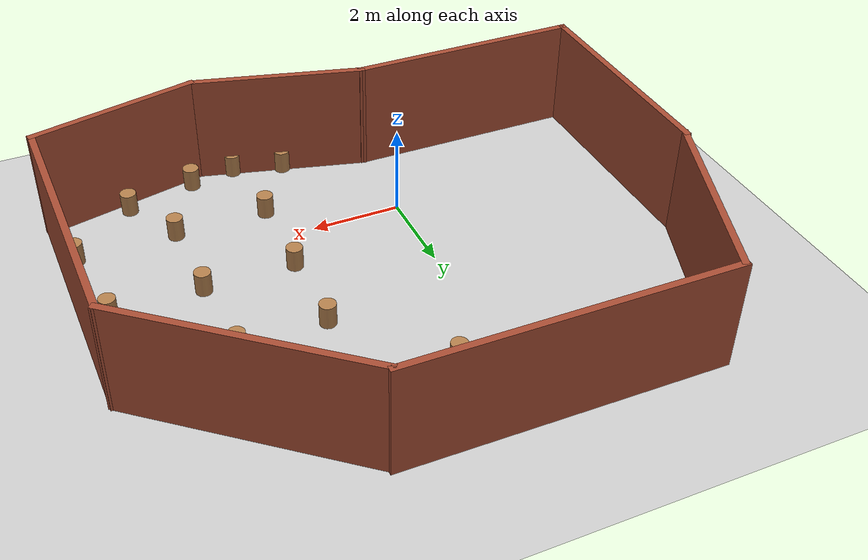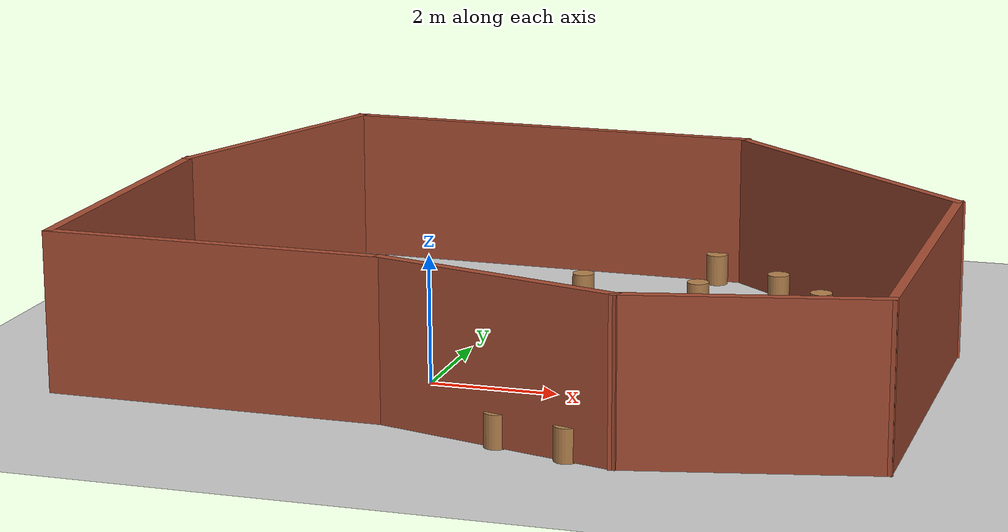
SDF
<sdf version="1.7">
 <world name="default">
  <model name="ground_plane">
   <static>1</static>
   <link name="link">
    <collision name="collision">
     <geometry><plane><normal>0 0 1</normal><size>100 100</size></plane></geometry>
     <surface>
      <contact><collide_bitmask>65535</collide_bitmask></contact>
      <friction><ode><mu>100</mu><mu2>50</mu2></ode></friction>
     </surface>
    </collision>
    <visual name="visual">
     <cast_shadows>0</cast_shadows>
     <geometry><plane><normal>0 0 1</normal><size>100 100</size></plane></geometry>
     <material>
      <script><uri>file://media/materials/scripts/gazebo.material</uri><name>Gazebo/Grey</name></script>
     </material>
    </visual>
   </link>
  </model>
  <model name="arena">
   <pose>1.06818 2.30351 0 0 -0 0</pose>
   <link name="Wall_0">
    <collision name="Wall_0_Collision">
     <geometry><box><size>5.53276 0.15 2.5</size></box></geometry>
     <pose>0 0 1.25 0 -0 0</pose>
    </collision>
    <visual name="Wall_0_Visual">
     <pose>0 0 1.25 0 -0 0</pose>
     <geometry><box><size>5.53276 0.15 2.5</size></box></geometry>
     <material>
      <script><uri>file://media/materials/scripts/gazebo.material</uri><name>Gazebo/Bricks</name></script>
      <ambient>1 1 1 1</ambient>
     </material>
     <meta><layer>0</layer></meta>
    </visual>
    <pose>4.23522 3.04809 0 0 -0 -0.698052</pose>
   </link>
   <link name="Wall_1">
    <collision name="Wall_1_Collision">
     <geometry><box><size>6 0.15 2.5</size></box></geometry>
     <pose>0 0 1.25 0 -0 0</pose>
    </collision>
    <visual name="Wall_1_Visual">
     <pose>0 0 1.25 0 -0 0</pose>
     <geometry><box><size>6 0.15 2.5</size></box></geometry>
     <material>
      <script><uri>file://media/materials/scripts/gazebo.material</uri><name>Gazebo/Bricks</name></script>
      <ambient>1 1 1 1</ambient>
     </material>
     <meta><layer>0</layer></meta>
    </visual>
    <pose>6.29708 -1.60673 0 0 -0 -1.5708</pose>
   </link>
   <link name="Wall_2">
    <collision name="Wall_2_Collision">
     <geometry><box><size>3.91086 0.15 2.5</size></box></geometry>
     <pose>0 0 1.25 0 -0 0</pose>
    </collision>
    <visual name="Wall_2_Visual">
     <pose>0 0 1.25 0 -0 0</pose>
     <geometry><box><size>3.91086 0.15 2.5</size></box></geometry>
     <material>
      <script><uri>file://media/materials/scripts/gazebo.material</uri><name>Gazebo/Bricks</name></script>
      <ambient>1 1 1 1</ambient>
     </material>
     <meta><layer>0</layer></meta>
    </visual>
    <pose>4.46185 -4.94157 0 0 -0 -2.92188</pose>
   </link>
   <link name="Wall_3">
    <collision name="Wall_3_Collision">
     <geometry><box><size>4 0.15 2.5</size></box></geometry>
     <pose>0 0 1.25 0 -0 0</pose>
    </collision>
    <visual name="Wall_3_Visual">
     <pose>0 0 1.25 0 -0 0</pose>
     <geometry><box><size>4 0.15 2.5</size></box></geometry>
     <material>
      <script><uri>file://media/materials/scripts/gazebo.material</uri><name>Gazebo/Bricks</name></script>
      <ambient>1 1 1 1</ambient>
     </material>
     <meta><layer>0</layer></meta>
    </visual>
    <pose>0.76722 -4.85318 0 0 -0 2.87979</pose>
   </link>
   <link name="Wall_4">
    <collision name="Wall_4_Collision">
     <geometry><box><size>5.3647 0.15 2.5</size></box></geometry>
     <pose>0 0 1.25 0 -0 0</pose>
    </collision>
    <visual name="Wall_4_Visual">
     <pose>0 0 1.25 0 -0 0</pose>
     <geometry><box><size>5.3647 0.15 2.5</size></box></geometry>
     <material>
      <script><uri>file://media/materials/scripts/gazebo.material</uri><name>Gazebo/Bricks</name></script>
      <ambient>1 1 1 1</ambient>
     </material>
     <meta><layer>0</layer></meta>
    </visual>
    <pose>-3.69923 -4.33501 0 0 -0 3.13394</pose>
   </link>
   <link name="Wall_5">
    <collision name="Wall_5_Collision">
     <geometry><box><size>5.25 0.15 2.5</size></box></geometry>
     <pose>0 0 1.25 0 -0 0</pose>
    </collision>
    <visual name="Wall_5_Visual">
     <pose>0 0 1.25 0 -0 0</pose>
     <geometry><box><size>5.25 0.15 2.5</size></box></geometry>
     <material>
      <script><uri>file://media/materials/scripts/gazebo.material</uri><name>Gazebo/Bricks</name></script>
      <ambient>1 1 1 1</ambient>
     </material>
     <meta><layer>0</layer></meta>
    </visual>
    <pose>-6.30628 -1.72516 0 0 -0 1.5708</pose>
   </link>
   <link name="Wall_6">
    <collision name="Wall_6_Collision">
     <geometry><box><size>4.49397 0.15 2.5</size></box></geometry>
     <pose>0 0 1.25 0 -0 0</pose>
    </collision>
    <visual name="Wall_6_Visual">
     <pose>0 0 1.25 0 -0 0</pose>
     <geometry><box><size>4.49397 0.15 2.5</size></box></geometry>
     <material>
      <script><uri>file://media/materials/scripts/gazebo.material</uri><name>Gazebo/Bricks</name></script>
      <ambient>1 1 1 1</ambient>
     </material>
     <meta><layer>0</layer></meta>
    </visual>
    <pose>-5.54802 2.82027 0 0 -0 1.21418</pose>
   </link>
   <link name="Wall_7">
    <collision name="Wall_7_Collision">
     <geometry><box><size>7.11356 0.15 2.5</size></box></geometry>
     <pose>0 0 1.25 0 -0 0</pose>
    </collision>
    <visual name="Wall_7_Visual">
     <pose>0 0 1.25 0 -0 0</pose>
     <geometry><box><size>7.11356 0.15 2.5</size></box></geometry>
     <material>
      <script><uri>file://media/materials/scripts/gazebo.material</uri><name>Gazebo/Bricks</name></script>
      <ambient>1 1 1 1</ambient>
     </material>
     <meta><layer>0</layer></meta>
    </visual>
    <pose>-1.30819 4.85665 0 0 -0 -0.011157</pose>
   </link>
   <static>1</static>
  </model>
  <model name="wooden_block_clone_3_clone_3">
   <link name="link_0">
    <inertial>
     <mass>145.751</mass>
     <inertia><ixx>13.3534</ixx><ixy>0</ixy><ixz>0</ixz><iyy>13.3534</iyy><iyz>0</iyz><izz>2.41499</izz></inertia>
    </inertial>
    <visual name="visual">
     <geometry><cylinder><radius>0.18204</radius><length>1</length></cylinder></geometry>
     <material>
      <lighting>1</lighting>
      <script><uri>file://media/materials/scripts/gazebo.material</uri><name>Gazebo/Wood</name></script>
      <shader type="pixel"><normal_map>__default__</normal_map></shader>
      <ambient>0.3 0.3 0.3 1</ambient>
      <diffuse>0.7 0.7 0.7 1</diffuse>
      <specular>0.01 0.01 0.01 1</specular>
      <emissive>0 0 0 1</emissive>
     </material>
    </visual>
    <collision name="collision">
     <geometry><cylinder><radius>0.18204</radius><length>1</length></cylinder></geometry>
     <surface>
      <friction>
       <ode><mu>1</mu><mu2>1</mu2><fdir1>0 0 0</fdir1><slip1>0</slip1><slip2>0</slip2></ode>
       <torsional>
        <coefficient>1</coefficient>
        <patch_radius>0</patch_radius>
        <surface_radius>0</surface_radius>
        <use_patch_radius>1</use_patch_radius>
        <ode><slip>0</slip></ode>
       </torsional>
      </friction>
      <bounce><restitution_coefficient>0</restitution_coefficient><threshold>1e+06</threshold></bounce>
      <contact>
       <collide_without_contact>0</collide_without_contact>
       <collide_without_contact_bitmask>1</collide_without_contact_bitmask>
       <collide_bitmask>1</collide_bitmask>
       <ode>
        <soft_cfm>0</soft_cfm>
        <soft_erp>0.2</soft_erp>
        <kp>1e+13</kp>
        <kd>1</kd>
        <max_vel>0.01</max_vel>
        <min_depth>0</min_depth>
       </ode>
       <bullet>
        <split_impulse>1</split_impulse>
        <split_impulse_penetration_threshold>-0.01</split_impulse_penetration_threshold>
        <soft_cfm>0</soft_cfm>
        <soft_erp>0.2</soft_erp>
        <kp>1e+13</kp>
        <kd>1</kd>
       </bullet>
      </contact>
     </surface>
    </collision>
   </link>
   <static>1</static>
   <pose>2.79209 -0.988405 0 0 -0 0</pose>
  </model>
  <model name="wooden_block_clone_3_clone_4">
   <link name="link_0">
    <inertial>
     <mass>145.751</mass>
     <inertia><ixx>13.3534</ixx><ixy>0</ixy><ixz>0</ixz><iyy>13.3534</iyy><iyz>0</iyz><izz>2.41499</izz></inertia>
    </inertial>
    <visual name="visual">
     <geometry><cylinder><radius>0.18204</radius><length>1</length></cylinder></geometry>
     <material>
      <lighting>1</lighting>
      <script><uri>file://media/materials/scripts/gazebo.material</uri><name>Gazebo/Wood</name></script>
      <shader type="pixel"><normal_map>__default__</normal_map></shader>
      <ambient>0.3 0.3 0.3 1</ambient>
      <diffuse>0.7 0.7 0.7 1</diffuse>
      <specular>0.01 0.01 0.01 1</specular>
      <emissive>0 0 0 1</emissive>
     </material>
    </visual>
    <collision name="collision">
     <geometry><cylinder><radius>0.18204</radius><length>1</length></cylinder></geometry>
     <surface>
      <friction>
       <ode><mu>1</mu><mu2>1</mu2><fdir1>0 0 0</fdir1><slip1>0</slip1><slip2>0</slip2></ode>
       <torsional>
        <coefficient>1</coefficient>
        <patch_radius>0</patch_radius>
        <surface_radius>0</surface_radius>
        <use_patch_radius>1</use_patch_radius>
        <ode><slip>0</slip></ode>
       </torsional>
      </friction>
      <bounce><restitution_coefficient>0</restitution_coefficient><threshold>1e+06</threshold></bounce>
      <contact>
       <collide_without_contact>0</collide_without_contact>
       <collide_without_contact_bitmask>1</collide_without_contact_bitmask>
       <collide_bitmask>1</collide_bitmask>
       <ode>
        <soft_cfm>0</soft_cfm>
        <soft_erp>0.2</soft_erp>
        <kp>1e+13</kp>
        <kd>1</kd>
        <max_vel>0.01</max_vel>
        <min_depth>0</min_depth>
       </ode>
       <bullet>
        <split_impulse>1</split_impulse>
        <split_impulse_penetration_threshold>-0.01</split_impulse_penetration_threshold>
        <soft_cfm>0</soft_cfm>
        <soft_erp>0.2</soft_erp>
        <kp>1e+13</kp>
        <kd>1</kd>
       </bullet>
      </contact>
     </surface>
    </collision>
   </link>
   <static>1</static>
   <pose>2.83296 1.04178 0 0 -0 0</pose>
  </model>
  <model name="wooden_block_clone_3_clone_5">
   <link name="link_0">
    <inertial>
     <mass>145.751</mass>
     <inertia><ixx>13.3534</ixx><ixy>0</ixy><ixz>0</ixz><iyy>13.3534</iyy><iyz>0</iyz><izz>2.41499</izz></inertia>
    </inertial>
    <visual name="visual">
     <geometry><cylinder><radius>0.18204</radius><length>1</length></cylinder></geometry>
     <material>
      <lighting>1</lighting>
      <script><uri>file://media/materials/scripts/gazebo.material</uri><name>Gazebo/Wood</name></script>
      <shader type="pixel"><normal_map>__default__</normal_map></shader>
      <ambient>0.3 0.3 0.3 1</ambient>
      <diffuse>0.7 0.7 0.7 1</diffuse>
      <specular>0.01 0.01 0.01 1</specular>
      <emissive>0 0 0 1</emissive>
     </material>
    </visual>
    <collision name="collision">
     <geometry><cylinder><radius>0.18204</radius><length>1</length></cylinder></geometry>
     <surface>
      <friction>
       <ode><mu>1</mu><mu2>1</mu2><fdir1>0 0 0</fdir1><slip1>0</slip1><slip2>0</slip2></ode>
       <torsional>
        <coefficient>1</coefficient>
        <patch_radius>0</patch_radius>
        <surface_radius>0</surface_radius>
        <use_patch_radius>1</use_patch_radius>
        <ode><slip>0</slip></ode>
       </torsional>
      </friction>
      <bounce><restitution_coefficient>0</restitution_coefficient><threshold>1e+06</threshold></bounce>
      <contact>
       <collide_without_contact>0</collide_without_contact>
       <collide_without_contact_bitmask>1</collide_without_contact_bitmask>
       <collide_bitmask>1</collide_bitmask>
       <ode>
        <soft_cfm>0</soft_cfm>
        <soft_erp>0.2</soft_erp>
        <kp>1e+13</kp>
        <kd>1</kd>
        <max_vel>0.01</max_vel>
        <min_depth>0</min_depth>
       </ode>
       <bullet>
        <split_impulse>1</split_impulse>
        <split_impulse_penetration_threshold>-0.01</split_impulse_penetration_threshold>
        <soft_cfm>0</soft_cfm>
        <soft_erp>0.2</soft_erp>
        <kp>1e+13</kp>
        <kd>1</kd>
       </bullet>
      </contact>
     </surface>
    </collision>
   </link>
   <static>1</static>
   <pose>4.84954 1.05475 0 0 -0 0</pose>
  </model>
  <model name="wooden_block_clone_3_clone_6">
   <link name="link_0">
    <inertial>
     <mass>145.751</mass>
     <inertia><ixx>13.3534</ixx><ixy>0</ixy><ixz>0</ixz><iyy>13.3534</iyy><iyz>0</iyz><izz>2.41499</izz></inertia>
    </inertial>
    <visual name="visual">
     <geometry><cylinder><radius>0.18204</radius><length>1</length></cylinder></geometry>
     <material>
      <lighting>1</lighting>
      <script><uri>file://media/materials/scripts/gazebo.material</uri><name>Gazebo/Wood</name></script>
      <shader type="pixel"><normal_map>__default__</normal_map></shader>
      <ambient>0.3 0.3 0.3 1</ambient>
      <diffuse>0.7 0.7 0.7 1</diffuse>
      <specular>0.01 0.01 0.01 1</specular>
      <emissive>0 0 0 1</emissive>
     </material>
    </visual>
    <collision name="collision">
     <geometry><cylinder><radius>0.18204</radius><length>1</length></cylinder></geometry>
     <surface>
      <friction>
       <ode><mu>1</mu><mu2>1</mu2><fdir1>0 0 0</fdir1><slip1>0</slip1><slip2>0</slip2></ode>
       <torsional>
        <coefficient>1</coefficient>
        <patch_radius>0</patch_radius>
        <surface_radius>0</surface_radius>
        <use_patch_radius>1</use_patch_radius>
        <ode><slip>0</slip></ode>
       </torsional>
      </friction>
      <bounce><restitution_coefficient>0</restitution_coefficient><threshold>1e+06</threshold></bounce>
      <contact>
       <collide_without_contact>0</collide_without_contact>
       <collide_without_contact_bitmask>1</collide_without_contact_bitmask>
       <collide_bitmask>1</collide_bitmask>
       <ode>
        <soft_cfm>0</soft_cfm>
        <soft_erp>0.2</soft_erp>
        <kp>1e+13</kp>
        <kd>1</kd>
        <max_vel>0.01</max_vel>
        <min_depth>0</min_depth>
       </ode>
       <bullet>
        <split_impulse>1</split_impulse>
        <split_impulse_penetration_threshold>-0.01</split_impulse_penetration_threshold>
        <soft_cfm>0</soft_cfm>
        <soft_erp>0.2</soft_erp>
        <kp>1e+13</kp>
        <kd>1</kd>
       </bullet>
      </contact>
     </surface>
    </collision>
   </link>
   <static>1</static>
   <pose>4.86545 -0.986799 0 0 -0 0</pose>
  </model>
  <model name="wooden_block_clone_3_clone_7">
   <link name="link_0">
    <inertial>
     <mass>145.751</mass>
     <inertia><ixx>13.3534</ixx><ixy>0</ixy><ixz>0</ixz><iyy>13.3534</iyy><iyz>0</iyz><izz>2.41499</izz></inertia>
    </inertial>
    <visual name="visual">
     <geometry><cylinder><radius>0.18204</radius><length>1</length></cylinder></geometry>
     <material>
      <lighting>1</lighting>
      <script><uri>file://media/materials/scripts/gazebo.material</uri><name>Gazebo/Wood</name></script>
      <shader type="pixel"><normal_map>__default__</normal_map></shader>
      <ambient>0.3 0.3 0.3 1</ambient>
      <diffuse>0.7 0.7 0.7 1</diffuse>
      <specular>0.01 0.01 0.01 1</specular>
      <emissive>0 0 0 1</emissive>
     </material>
    </visual>
    <collision name="collision">
     <geometry><cylinder><radius>0.18204</radius><length>1</length></cylinder></geometry>
     <surface>
      <friction>
       <ode><mu>1</mu><mu2>1</mu2><fdir1>0 0 0</fdir1><slip1>0</slip1><slip2>0</slip2></ode>
       <torsional>
        <coefficient>1</coefficient>
        <patch_radius>0</patch_radius>
        <surface_radius>0</surface_radius>
        <use_patch_radius>1</use_patch_radius>
        <ode><slip>0</slip></ode>
       </torsional>
      </friction>
      <bounce><restitution_coefficient>0</restitution_coefficient><threshold>1e+06</threshold></bounce>
      <contact>
       <collide_without_contact>0</collide_without_contact>
       <collide_without_contact_bitmask>1</collide_without_contact_bitmask>
       <collide_bitmask>1</collide_bitmask>
       <ode>
        <soft_cfm>0</soft_cfm>
        <soft_erp>0.2</soft_erp>
        <kp>1e+13</kp>
        <kd>1</kd>
        <max_vel>0.01</max_vel>
        <min_depth>0</min_depth>
       </ode>
       <bullet>
        <split_impulse>1</split_impulse>
        <split_impulse_penetration_threshold>-0.01</split_impulse_penetration_threshold>
        <soft_cfm>0</soft_cfm>
        <soft_erp>0.2</soft_erp>
        <kp>1e+13</kp>
        <kd>1</kd>
       </bullet>
      </contact>
     </surface>
    </collision>
   </link>
   <static>1</static>
   <pose>6.83938 1.08948 0 0 -0 0</pose>
  </model>
  <model name="wooden_block_clone_3_clone_8">
   <link name="link_0">
    <inertial>
     <mass>145.751</mass>
     <inertia><ixx>13.3534</ixx><ixy>0</ixy><ixz>0</ixz><iyy>13.3534</iyy><iyz>0</iyz><izz>2.41499</izz></inertia>
    </inertial>
    <visual name="visual">
     <geometry><cylinder><radius>0.18204</radius><length>1</length></cylinder></geometry>
     <material>
      <lighting>1</lighting>
      <script><uri>file://media/materials/scripts/gazebo.material</uri><name>Gazebo/Wood</name></script>
      <shader type="pixel"><normal_map>__default__</normal_map></shader>
      <ambient>0.3 0.3 0.3 1</ambient>
      <diffuse>0.7 0.7 0.7 1</diffuse>
      <specular>0.01 0.01 0.01 1</specular>
      <emissive>0 0 0 1</emissive>
     </material>
    </visual>
    <collision name="collision">
     <geometry><cylinder><radius>0.18204</radius><length>1</length></cylinder></geometry>
     <surface>
      <friction>
       <ode><mu>1</mu><mu2>1</mu2><fdir1>0 0 0</fdir1><slip1>0</slip1><slip2>0</slip2></ode>
       <torsional>
        <coefficient>1</coefficient>
        <patch_radius>0</patch_radius>
        <surface_radius>0</surface_radius>
        <use_patch_radius>1</use_patch_radius>
        <ode><slip>0</slip></ode>
       </torsional>
      </friction>
      <bounce><restitution_coefficient>0</restitution_coefficient><threshold>1e+06</threshold></bounce>
      <contact>
       <collide_without_contact>0</collide_without_contact>
       <collide_without_contact_bitmask>1</collide_without_contact_bitmask>
       <collide_bitmask>1</collide_bitmask>
       <ode>
        <soft_cfm>0</soft_cfm>
        <soft_erp>0.2</soft_erp>
        <kp>1e+13</kp>
        <kd>1</kd>
        <max_vel>0.01</max_vel>
        <min_depth>0</min_depth>
       </ode>
       <bullet>
        <split_impulse>1</split_impulse>
        <split_impulse_penetration_threshold>-0.01</split_impulse_penetration_threshold>
        <soft_cfm>0</soft_cfm>
        <soft_erp>0.2</soft_erp>
        <kp>1e+13</kp>
        <kd>1</kd>
       </bullet>
      </contact>
     </surface>
    </collision>
   </link>
   <static>1</static>
   <pose>7.06622 -0.975193 0 0 -0 0</pose>
  </model>
  <model name="wooden_block_clone_3_clone_9">
   <link name="link_0">
    <inertial>
     <mass>145.751</mass>
     <inertia><ixx>13.3534</ixx><ixy>0</ixy><ixz>0</ixz><iyy>13.3534</iyy><iyz>0</iyz><izz>2.41499</izz></inertia>
    </inertial>
    <visual name="visual">
     <geometry><cylinder><radius>0.18204</radius><length>1</length></cylinder></geometry>
     <material>
      <lighting>1</lighting>
      <script><uri>file://media/materials/scripts/gazebo.material</uri><name>Gazebo/Wood</name></script>
      <shader type="pixel"><normal_map>__default__</normal_map></shader>
      <ambient>0.3 0.3 0.3 1</ambient>
      <diffuse>0.7 0.7 0.7 1</diffuse>
      <specular>0.01 0.01 0.01 1</specular>
      <emissive>0 0 0 1</emissive>
     </material>
    </visual>
    <collision name="collision">
     <geometry><cylinder><radius>0.18204</radius><length>1</length></cylinder></geometry>
     <surface>
      <friction>
       <ode><mu>1</mu><mu2>1</mu2><fdir1>0 0 0</fdir1><slip1>0</slip1><slip2>0</slip2></ode>
       <torsional>
        <coefficient>1</coefficient>
        <patch_radius>0</patch_radius>
        <surface_radius>0</surface_radius>
        <use_patch_radius>1</use_patch_radius>
        <ode><slip>0</slip></ode>
       </torsional>
      </friction>
      <bounce><restitution_coefficient>0</restitution_coefficient><threshold>1e+06</threshold></bounce>
      <contact>
       <collide_without_contact>0</collide_without_contact>
       <collide_without_contact_bitmask>1</collide_without_contact_bitmask>
       <collide_bitmask>1</collide_bitmask>
       <ode>
        <soft_cfm>0</soft_cfm>
        <soft_erp>0.2</soft_erp>
        <kp>1e+13</kp>
        <kd>1</kd>
        <max_vel>0.01</max_vel>
        <min_depth>0</min_depth>
       </ode>
       <bullet>
        <split_impulse>1</split_impulse>
        <split_impulse_penetration_threshold>-0.01</split_impulse_penetration_threshold>
        <soft_cfm>0</soft_cfm>
        <soft_erp>0.2</soft_erp>
        <kp>1e+13</kp>
        <kd>1</kd>
       </bullet>
      </contact>
     </surface>
    </collision>
   </link>
   <static>1</static>
   <pose>4.00547 -2.68421 0 0 -0 0</pose>
  </model>
  <model name="wooden_block_clone_3_clone_17">
   <link name="link_0">
    <inertial>
     <mass>145.751</mass>
     <inertia><ixx>13.3534</ixx><ixy>0</ixy><ixz>0</ixz><iyy>13.3534</iyy><iyz>0</iyz><izz>2.41499</izz></inertia>
    </inertial>
    <visual name="visual">
     <geometry><cylinder><radius>0.18204</radius><length>1</length></cylinder></geometry>
     <material>
      <lighting>1</lighting>
      <script><uri>file://media/materials/scripts/gazebo.material</uri><name>Gazebo/Wood</name></script>
      <shader type="pixel"><normal_map>__default__</normal_map></shader>
      <ambient>0.3 0.3 0.3 1</ambient>
      <diffuse>0.7 0.7 0.7 1</diffuse>
      <specular>0.01 0.01 0.01 1</specular>
      <emissive>0 0 0 1</emissive>
     </material>
    </visual>
    <collision name="collision">
     <geometry><cylinder><radius>0.18204</radius><length>1</length></cylinder></geometry>
     <surface>
      <friction>
       <ode><mu>1</mu><mu2>1</mu2><fdir1>0 0 0</fdir1><slip1>0</slip1><slip2>0</slip2></ode>
       <torsional>
        <coefficient>1</coefficient>
        <patch_radius>0</patch_radius>
        <surface_radius>0</surface_radius>
        <use_patch_radius>1</use_patch_radius>
        <ode><slip>0</slip></ode>
       </torsional>
      </friction>
      <bounce><restitution_coefficient>0</restitution_coefficient><threshold>1e+06</threshold></bounce>
      <contact>
       <collide_without_contact>0</collide_without_contact>
       <collide_without_contact_bitmask>1</collide_without_contact_bitmask>
       <collide_bitmask>1</collide_bitmask>
       <ode>
        <soft_cfm>0</soft_cfm>
        <soft_erp>0.2</soft_erp>
        <kp>1e+13</kp>
        <kd>1</kd>
        <max_vel>0.01</max_vel>
        <min_depth>0</min_depth>
       </ode>
       <bullet>
        <split_impulse>1</split_impulse>
        <split_impulse_penetration_threshold>-0.01</split_impulse_penetration_threshold>
        <soft_cfm>0</soft_cfm>
        <soft_erp>0.2</soft_erp>
        <kp>1e+13</kp>
        <kd>1</kd>
       </bullet>
      </contact>
     </surface>
    </collision>
   </link>
   <static>1</static>
   <pose>2.85236 3.01716 0 0 -0 0</pose>
  </model>
  <model name="wooden_block_clone_3_clone_18">
   <link name="link_0">
    <inertial>
     <mass>145.751</mass>
     <inertia><ixx>13.3534</ixx><ixy>0</ixy><ixz>0</ixz><iyy>13.3534</iyy><iyz>0</iyz><izz>2.41499</izz></inertia>
    </inertial>
    <visual name="visual">
     <geometry><cylinder><radius>0.18204</radius><length>1</length></cylinder></geometry>
     <material>
      <lighting>1</lighting>
      <script><uri>file://media/materials/scripts/gazebo.material</uri><name>Gazebo/Wood</name></script>
      <shader type="pixel"><normal_map>__default__</normal_map></shader>
      <ambient>0.3 0.3 0.3 1</ambient>
      <diffuse>0.7 0.7 0.7 1</diffuse>
      <specular>0.01 0.01 0.01 1</specular>
      <emissive>0 0 0 1</emissive>
     </material>
    </visual>
    <collision name="collision">
     <geometry><cylinder><radius>0.18204</radius><length>1</length></cylinder></geometry>
     <surface>
      <friction>
       <ode><mu>1</mu><mu2>1</mu2><fdir1>0 0 0</fdir1><slip1>0</slip1><slip2>0</slip2></ode>
       <torsional>
        <coefficient>1</coefficient>
        <patch_radius>0</patch_radius>
        <surface_radius>0</surface_radius>
        <use_patch_radius>1</use_patch_radius>
        <ode><slip>0</slip></ode>
       </torsional>
      </friction>
      <bounce><restitution_coefficient>0</restitution_coefficient><threshold>1e+06</threshold></bounce>
      <contact>
       <collide_without_contact>0</collide_without_contact>
       <collide_without_contact_bitmask>1</collide_without_contact_bitmask>
       <collide_bitmask>1</collide_bitmask>
       <ode>
        <soft_cfm>0</soft_cfm>
        <soft_erp>0.2</soft_erp>
        <kp>1e+13</kp>
        <kd>1</kd>
        <max_vel>0.01</max_vel>
        <min_depth>0</min_depth>
       </ode>
       <bullet>
        <split_impulse>1</split_impulse>
        <split_impulse_penetration_threshold>-0.01</split_impulse_penetration_threshold>
        <soft_cfm>0</soft_cfm>
        <soft_erp>0.2</soft_erp>
        <kp>1e+13</kp>
        <kd>1</kd>
       </bullet>
      </contact>
     </surface>
    </collision>
   </link>
   <static>1</static>
   <pose>4.7761 3.09299 0 0 -0 0</pose>
  </model>
  <model name="wooden_block_clone_3_clone_19">
   <link name="link_0">
    <inertial>
     <mass>145.751</mass>
     <inertia><ixx>13.3534</ixx><ixy>0</ixy><ixz>0</ixz><iyy>13.3534</iyy><iyz>0</iyz><izz>2.41499</izz></inertia>
    </inertial>
    <visual name="visual">
     <geometry><cylinder><radius>0.18204</radius><length>1</length></cylinder></geometry>
     <material>
      <lighting>1</lighting>
      <script><uri>file://media/materials/scripts/gazebo.material</uri><name>Gazebo/Wood</name></script>
      <shader type="pixel"><normal_map>__default__</normal_map></shader>
      <ambient>0.3 0.3 0.3 1</ambient>
      <diffuse>0.7 0.7 0.7 1</diffuse>
      <specular>0.01 0.01 0.01 1</specular>
      <emissive>0 0 0 1</emissive>
     </material>
    </visual>
    <collision name="collision">
     <geometry><cylinder><radius>0.18204</radius><length>1</length></cylinder></geometry>
     <surface>
      <friction>
       <ode><mu>1</mu><mu2>1</mu2><fdir1>0 0 0</fdir1><slip1>0</slip1><slip2>0</slip2></ode>
       <torsional>
        <coefficient>1</coefficient>
        <patch_radius>0</patch_radius>
        <surface_radius>0</surface_radius>
        <use_patch_radius>1</use_patch_radius>
        <ode><slip>0</slip></ode>
       </torsional>
      </friction>
      <bounce><restitution_coefficient>0</restitution_coefficient><threshold>1e+06</threshold></bounce>
      <contact>
       <collide_without_contact>0</collide_without_contact>
       <collide_without_contact_bitmask>1</collide_without_contact_bitmask>
       <collide_bitmask>1</collide_bitmask>
       <ode>
        <soft_cfm>0</soft_cfm>
        <soft_erp>0.2</soft_erp>
        <kp>1e+13</kp>
        <kd>1</kd>
        <max_vel>0.01</max_vel>
        <min_depth>0</min_depth>
       </ode>
       <bullet>
        <split_impulse>1</split_impulse>
        <split_impulse_penetration_threshold>-0.01</split_impulse_penetration_threshold>
        <soft_cfm>0</soft_cfm>
        <soft_erp>0.2</soft_erp>
        <kp>1e+13</kp>
        <kd>1</kd>
       </bullet>
      </contact>
     </surface>
    </collision>
   </link>
   <static>1</static>
   <pose>6.93099 3.04985 0 0 -0 0</pose>
  </model>
  <model name="wooden_block_clone_3_clone_20">
   <link name="link_0">
    <inertial>
     <mass>145.751</mass>
     <inertia><ixx>13.3534</ixx><ixy>0</ixy><ixz>0</ixz><iyy>13.3534</iyy><iyz>0</iyz><izz>2.41499</izz></inertia>
    </inertial>
    <visual name="visual">
     <geometry><cylinder><radius>0.18204</radius><length>1</length></cylinder></geometry>
     <material>
      <lighting>1</lighting>
      <script><uri>file://media/materials/scripts/gazebo.material</uri><name>Gazebo/Wood</name></script>
      <shader type="pixel"><normal_map>__default__</normal_map></shader>
      <ambient>0.3 0.3 0.3 1</ambient>
      <diffuse>0.7 0.7 0.7 1</diffuse>
      <specular>0.01 0.01 0.01 1</specular>
      <emissive>0 0 0 1</emissive>
     </material>
    </visual>
    <collision name="collision">
     <geometry><cylinder><radius>0.18204</radius><length>1</length></cylinder></geometry>
     <surface>
      <friction>
       <ode><mu>1</mu><mu2>1</mu2><fdir1>0 0 0</fdir1><slip1>0</slip1><slip2>0</slip2></ode>
       <torsional>
        <coefficient>1</coefficient>
        <patch_radius>0</patch_radius>
        <surface_radius>0</surface_radius>
        <use_patch_radius>1</use_patch_radius>
        <ode><slip>0</slip></ode>
       </torsional>
      </friction>
      <bounce><restitution_coefficient>0</restitution_coefficient><threshold>1e+06</threshold></bounce>
      <contact>
       <collide_without_contact>0</collide_without_contact>
       <collide_without_contact_bitmask>1</collide_without_contact_bitmask>
       <collide_bitmask>1</collide_bitmask>
       <ode>
        <soft_cfm>0</soft_cfm>
        <soft_erp>0.2</soft_erp>
        <kp>1e+13</kp>
        <kd>1</kd>
        <max_vel>0.01</max_vel>
        <min_depth>0</min_depth>
       </ode>
       <bullet>
        <split_impulse>1</split_impulse>
        <split_impulse_penetration_threshold>-0.01</split_impulse_penetration_threshold>
        <soft_cfm>0</soft_cfm>
        <soft_erp>0.2</soft_erp>
        <kp>1e+13</kp>
        <kd>1</kd>
       </bullet>
      </contact>
     </surface>
    </collision>
   </link>
   <static>1</static>
   <pose>5 5 0 0 -0 0</pose>
  </model>
  <model name="wooden_block_clone_3_clone_21">
   <link name="link_0">
    <inertial>
     <mass>145.751</mass>
     <inertia><ixx>13.3534</ixx><ixy>0</ixy><ixz>0</ixz><iyy>13.3534</iyy><iyz>0</iyz><izz>2.41499</izz></inertia>
    </inertial>
    <visual name="visual">
     <geometry><cylinder><radius>0.18204</radius><length>1</length></cylinder></geometry>
     <material>
      <lighting>1</lighting>
      <script><uri>file://media/materials/scripts/gazebo.material</uri><name>Gazebo/Wood</name></script>
      <shader type="pixel"><normal_map>__default__</normal_map></shader>
      <ambient>0.3 0.3 0.3 1</ambient>
      <diffuse>0.7 0.7 0.7 1</diffuse>
      <specular>0.01 0.01 0.01 1</specular>
      <emissive>0 0 0 1</emissive>
     </material>
    </visual>
    <collision name="collision">
     <geometry><cylinder><radius>0.18204</radius><length>1</length></cylinder></geometry>
     <surface>
      <friction>
       <ode><mu>1</mu><mu2>1</mu2><fdir1>0 0 0</fdir1><slip1>0</slip1><slip2>0</slip2></ode>
       <torsional>
        <coefficient>1</coefficient>
        <patch_radius>0</patch_radius>
        <surface_radius>0</surface_radius>
        <use_patch_radius>1</use_patch_radius>
        <ode><slip>0</slip></ode>
       </torsional>
      </friction>
      <bounce><restitution_coefficient>0</restitution_coefficient><threshold>1e+06</threshold></bounce>
      <contact>
       <collide_without_contact>0</collide_without_contact>
       <collide_without_contact_bitmask>1</collide_without_contact_bitmask>
       <collide_bitmask>1</collide_bitmask>
       <ode>
        <soft_cfm>0</soft_cfm>
        <soft_erp>0.2</soft_erp>
        <kp>1e+13</kp>
        <kd>1</kd>
        <max_vel>0.01</max_vel>
        <min_depth>0</min_depth>
       </ode>
       <bullet>
        <split_impulse>1</split_impulse>
        <split_impulse_penetration_threshold>-0.01</split_impulse_penetration_threshold>
        <soft_cfm>0</soft_cfm>
        <soft_erp>0.2</soft_erp>
        <kp>1e+13</kp>
        <kd>1</kd>
       </bullet>
      </contact>
     </surface>
    </collision>
   </link>
   <static>1</static>
   <pose>2.91853 5.08963 0 0 -0 0</pose>
  </model>
  <model name="wooden_block_clone_3_clone_22">
   <link name="link_0">
    <inertial>
     <mass>145.751</mass>
     <inertia><ixx>13.3534</ixx><ixy>0</ixy><ixz>0</ixz><iyy>13.3534</iyy><iyz>0</iyz><izz>2.41499</izz></inertia>
    </inertial>
    <visual name="visual">
     <geometry><cylinder><radius>0.18204</radius><length>1</length></cylinder></geometry>
     <material>
      <lighting>1</lighting>
      <script><uri>file://media/materials/scripts/gazebo.material</uri><name>Gazebo/Wood</name></script>
      <shader type="pixel"><normal_map>__default__</normal_map></shader>
      <ambient>0.3 0.3 0.3 1</ambient>
      <diffuse>0.7 0.7 0.7 1</diffuse>
      <specular>0.01 0.01 0.01 1</specular>
      <emissive>0 0 0 1</emissive>
     </material>
    </visual>
    <collision name="collision">
     <geometry><cylinder><radius>0.18204</radius><length>1</length></cylinder></geometry>
     <surface>
      <friction>
       <ode><mu>1</mu><mu2>1</mu2><fdir1>0 0 0</fdir1><slip1>0</slip1><slip2>0</slip2></ode>
       <torsional>
        <coefficient>1</coefficient>
        <patch_radius>0</patch_radius>
        <surface_radius>0</surface_radius>
        <use_patch_radius>1</use_patch_radius>
        <ode><slip>0</slip></ode>
       </torsional>
      </friction>
      <bounce><restitution_coefficient>0</restitution_coefficient><threshold>1e+06</threshold></bounce>
      <contact>
       <collide_without_contact>0</collide_without_contact>
       <collide_without_contact_bitmask>1</collide_without_contact_bitmask>
       <collide_bitmask>1</collide_bitmask>
       <ode>
        <soft_cfm>0</soft_cfm>
        <soft_erp>0.2</soft_erp>
        <kp>1e+13</kp>
        <kd>1</kd>
        <max_vel>0.01</max_vel>
        <min_depth>0</min_depth>
       </ode>
       <bullet>
        <split_impulse>1</split_impulse>
        <split_impulse_penetration_threshold>-0.01</split_impulse_penetration_threshold>
        <soft_cfm>0</soft_cfm>
        <soft_erp>0.2</soft_erp>
        <kp>1e+13</kp>
        <kd>1</kd>
       </bullet>
      </contact>
     </surface>
    </collision>
   </link>
   <static>1</static>
   <pose>0.951906 5.10145 0 0 -0 0</pose>
  </model>
  <model name="wooden_block_clone_3_clone_28">
   <link name="link_0">
    <inertial>
     <mass>145.751</mass>
     <inertia><ixx>13.3534</ixx><ixy>0</ixy><ixz>0</ixz><iyy>13.3534</iyy><iyz>0</iyz><izz>2.41499</izz></inertia>
    </inertial>
    <visual name="visual">
     <geometry><cylinder><radius>0.18204</radius><length>1</length></cylinder></geometry>
     <material>
      <lighting>1</lighting>
      <script><uri>file://media/materials/scripts/gazebo.material</uri><name>Gazebo/Wood</name></script>
      <shader type="pixel"><normal_map>__default__</normal_map></shader>
      <ambient>0.3 0.3 0.3 1</ambient>
      <diffuse>0.7 0.7 0.7 1</diffuse>
      <specular>0.01 0.01 0.01 1</specular>
      <emissive>0 0 0 1</emissive>
     </material>
    </visual>
    <collision name="collision">
     <geometry><cylinder><radius>0.18204</radius><length>1</length></cylinder></geometry>
     <surface>
      <friction>
       <ode><mu>1</mu><mu2>1</mu2><fdir1>0 0 0</fdir1><slip1>0</slip1><slip2>0</slip2></ode>
       <torsional>
        <coefficient>1</coefficient>
        <patch_radius>0</patch_radius>
        <surface_radius>0</surface_radius>
        <use_patch_radius>1</use_patch_radius>
        <ode><slip>0</slip></ode>
       </torsional>
      </friction>
      <bounce><restitution_coefficient>0</restitution_coefficient><threshold>1e+06</threshold></bounce>
      <contact>
       <collide_without_contact>0</collide_without_contact>
       <collide_without_contact_bitmask>1</collide_without_contact_bitmask>
       <collide_bitmask>1</collide_bitmask>
       <ode>
        <soft_cfm>0</soft_cfm>
        <soft_erp>0.2</soft_erp>
        <kp>1e+13</kp>
        <kd>1</kd>
        <max_vel>0.01</max_vel>
        <min_depth>0</min_depth>
       </ode>
       <bullet>
        <split_impulse>1</split_impulse>
        <split_impulse_penetration_threshold>-0.01</split_impulse_penetration_threshold>
        <soft_cfm>0</soft_cfm>
        <soft_erp>0.2</soft_erp>
        <kp>1e+13</kp>
        <kd>1</kd>
       </bullet>
      </contact>
     </surface>
    </collision>
   </link>
   <static>1</static>
   <pose>2.80241 6.96834 0 0 -0 0</pose>
  </model>
  <model name="wooden_block_clone_3_clone_29">
   <link name="link_0">
    <inertial>
     <mass>145.751</mass>
     <inertia><ixx>13.3534</ixx><ixy>0</ixy><ixz>0</ixz><iyy>13.3534</iyy><iyz>0</iyz><izz>2.41499</izz></inertia>
    </inertial>
    <visual name="visual">
     <geometry><cylinder><radius>0.18204</radius><length>1</length></cylinder></geometry>
     <material>
      <lighting>1</lighting>
      <script><uri>file://media/materials/scripts/gazebo.material</uri><name>Gazebo/Wood</name></script>
      <shader type="pixel"><normal_map>__default__</normal_map></shader>
      <ambient>0.3 0.3 0.3 1</ambient>
      <diffuse>0.7 0.7 0.7 1</diffuse>
      <specular>0.01 0.01 0.01 1</specular>
      <emissive>0 0 0 1</emissive>
     </material>
    </visual>
    <collision name="collision">
     <geometry><cylinder><radius>0.18204</radius><length>1</length></cylinder></geometry>
     <surface>
      <friction>
       <ode><mu>1</mu><mu2>1</mu2><fdir1>0 0 0</fdir1><slip1>0</slip1><slip2>0</slip2></ode>
       <torsional>
        <coefficient>1</coefficient>
        <patch_radius>0</patch_radius>
        <surface_radius>0</surface_radius>
        <use_patch_radius>1</use_patch_radius>
        <ode><slip>0</slip></ode>
       </torsional>
      </friction>
      <bounce><restitution_coefficient>0</restitution_coefficient><threshold>1e+06</threshold></bounce>
      <contact>
       <collide_without_contact>0</collide_without_contact>
       <collide_without_contact_bitmask>1</collide_without_contact_bitmask>
       <collide_bitmask>1</collide_bitmask>
       <ode>
        <soft_cfm>0</soft_cfm>
        <soft_erp>0.2</soft_erp>
        <kp>1e+13</kp>
        <kd>1</kd>
        <max_vel>0.01</max_vel>
        <min_depth>0</min_depth>
       </ode>
       <bullet>
        <split_impulse>1</split_impulse>
        <split_impulse_penetration_threshold>-0.01</split_impulse_penetration_threshold>
        <soft_cfm>0</soft_cfm>
        <soft_erp>0.2</soft_erp>
        <kp>1e+13</kp>
        <kd>1</kd>
       </bullet>
      </contact>
     </surface>
    </collision>
   </link>
   <static>1</static>
   <pose>4.09134 5.94477 0 0 -0 0</pose>
  </model>
  <model name="wooden_block_clone_3_clone_30">
   <link name="link_0">
    <inertial>
     <mass>145.751</mass>
     <inertia><ixx>13.3534</ixx><ixy>0</ixy><ixz>0</ixz><iyy>13.3534</iyy><iyz>0</iyz><izz>2.41499</izz></inertia>
    </inertial>
    <visual name="visual">
     <geometry><cylinder><radius>0.18204</radius><length>1</length></cylinder></geometry>
     <material>
      <lighting>1</lighting>
      <script><uri>file://media/materials/scripts/gazebo.material</uri><name>Gazebo/Wood</name></script>
      <shader type="pixel"><normal_map>__default__</normal_map></shader>
      <ambient>0.3 0.3 0.3 1</ambient>
      <diffuse>0.7 0.7 0.7 1</diffuse>
      <specular>0.01 0.01 0.01 1</specular>
      <emissive>0 0 0 1</emissive>
     </material>
    </visual>
    <collision name="collision">
     <geometry><cylinder><radius>0.18204</radius><length>1</length></cylinder></geometry>
     <surface>
      <friction>
       <ode><mu>1</mu><mu2>1</mu2><fdir1>0 0 0</fdir1><slip1>0</slip1><slip2>0</slip2></ode>
       <torsional>
        <coefficient>1</coefficient>
        <patch_radius>0</patch_radius>
        <surface_radius>0</surface_radius>
        <use_patch_radius>1</use_patch_radius>
        <ode><slip>0</slip></ode>
       </torsional>
      </friction>
      <bounce><restitution_coefficient>0</restitution_coefficient><threshold>1e+06</threshold></bounce>
      <contact>
       <collide_without_contact>0</collide_without_contact>
       <collide_without_contact_bitmask>1</collide_without_contact_bitmask>
       <collide_bitmask>1</collide_bitmask>
       <ode>
        <soft_cfm>0</soft_cfm>
        <soft_erp>0.2</soft_erp>
        <kp>1e+13</kp>
        <kd>1</kd>
        <max_vel>0.01</max_vel>
        <min_depth>0</min_depth>
       </ode>
       <bullet>
        <split_impulse>1</split_impulse>
        <split_impulse_penetration_threshold>-0.01</split_impulse_penetration_threshold>
        <soft_cfm>0</soft_cfm>
        <soft_erp>0.2</soft_erp>
        <kp>1e+13</kp>
        <kd>1</kd>
       </bullet>
      </contact>
     </surface>
    </collision>
   </link>
   <static>1</static>
   <pose>6.21423 4.1498 0 0 -0 0</pose>
  </model>
  <model name="wooden_block_clone_3_clone_31">
   <link name="link_0">
    <inertial>
     <mass>145.751</mass>
     <inertia><ixx>13.3534</ixx><ixy>0</ixy><ixz>0</ixz><iyy>13.3534</iyy><iyz>0</iyz><izz>2.41499</izz></inertia>
    </inertial>
    <visual name="visual">
     <geometry><cylinder><radius>0.18204</radius><length>1</length></cylinder></geometry>
     <material>
      <lighting>1</lighting>
      <script><uri>file://media/materials/scripts/gazebo.material</uri><name>Gazebo/Wood</name></script>
      <shader type="pixel"><normal_map>__default__</normal_map></shader>
      <ambient>0.3 0.3 0.3 1</ambient>
      <diffuse>0.7 0.7 0.7 1</diffuse>
      <specular>0.01 0.01 0.01 1</specular>
      <emissive>0 0 0 1</emissive>
     </material>
    </visual>
    <collision name="collision">
     <geometry><cylinder><radius>0.18204</radius><length>1</length></cylinder></geometry>
     <surface>
      <friction>
       <ode><mu>1</mu><mu2>1</mu2><fdir1>0 0 0</fdir1><slip1>0</slip1><slip2>0</slip2></ode>
       <torsional>
        <coefficient>1</coefficient>
        <patch_radius>0</patch_radius>
        <surface_radius>0</surface_radius>
        <use_patch_radius>1</use_patch_radius>
        <ode><slip>0</slip></ode>
       </torsional>
      </friction>
      <bounce><restitution_coefficient>0</restitution_coefficient><threshold>1e+06</threshold></bounce>
      <contact>
       <collide_without_contact>0</collide_without_contact>
       <collide_without_contact_bitmask>1</collide_without_contact_bitmask>
       <collide_bitmask>1</collide_bitmask>
       <ode>
        <soft_cfm>0</soft_cfm>
        <soft_erp>0.2</soft_erp>
        <kp>1e+13</kp>
        <kd>1</kd>
        <max_vel>0.01</max_vel>
        <min_depth>0</min_depth>
       </ode>
       <bullet>
        <split_impulse>1</split_impulse>
        <split_impulse_penetration_threshold>-0.01</split_impulse_penetration_threshold>
        <soft_cfm>0</soft_cfm>
        <soft_erp>0.2</soft_erp>
        <kp>1e+13</kp>
        <kd>1</kd>
       </bullet>
      </contact>
     </surface>
    </collision>
   </link>
   <static>1</static>
   <pose>5.56674 -2.29209 0 0 -0 0</pose>
  </model>
  <model name="wooden_block_clone_3_clone_32">
   <link name="link_0">
    <inertial>
     <mass>145.751</mass>
     <inertia><ixx>13.3534</ixx><ixy>0</ixy><ixz>0</ixz><iyy>13.3534</iyy><iyz>0</iyz><izz>2.41499</izz></inertia>
    </inertial>
    <visual name="visual">
     <geometry><cylinder><radius>0.18204</radius><length>1</length></cylinder></geometry>
     <material>
      <lighting>1</lighting>
      <script><uri>file://media/materials/scripts/gazebo.material</uri><name>Gazebo/Wood</name></script>
      <shader type="pixel"><normal_map>__default__</normal_map></shader>
      <ambient>0.3 0.3 0.3 1</ambient>
      <diffuse>0.7 0.7 0.7 1</diffuse>
      <specular>0.01 0.01 0.01 1</specular>
      <emissive>0 0 0 1</emissive>
     </material>
    </visual>
    <collision name="collision">
     <geometry><cylinder><radius>0.18204</radius><length>1</length></cylinder></geometry>
     <surface>
      <friction>
       <ode><mu>1</mu><mu2>1</mu2><fdir1>0 0 0</fdir1><slip1>0</slip1><slip2>0</slip2></ode>
       <torsional>
        <coefficient>1</coefficient>
        <patch_radius>0</patch_radius>
        <surface_radius>0</surface_radius>
        <use_patch_radius>1</use_patch_radius>
        <ode><slip>0</slip></ode>
       </torsional>
      </friction>
      <bounce><restitution_coefficient>0</restitution_coefficient><threshold>1e+06</threshold></bounce>
      <contact>
       <collide_without_contact>0</collide_without_contact>
       <collide_without_contact_bitmask>1</collide_without_contact_bitmask>
       <collide_bitmask>1</collide_bitmask>
       <ode>
        <soft_cfm>0</soft_cfm>
        <soft_erp>0.2</soft_erp>
        <kp>1e+13</kp>
        <kd>1</kd>
        <max_vel>0.01</max_vel>
        <min_depth>0</min_depth>
       </ode>
       <bullet>
        <split_impulse>1</split_impulse>
        <split_impulse_penetration_threshold>-0.01</split_impulse_penetration_threshold>
        <soft_cfm>0</soft_cfm>
        <soft_erp>0.2</soft_erp>
        <kp>1e+13</kp>
        <kd>1</kd>
       </bullet>
      </contact>
     </surface>
    </collision>
   </link>
   <static>1</static>
   <pose>2.96521 -2.84906 0 0 -0 0</pose>
  </model>
  <model name="wooden_block_clone_3_clone_33">
   <link name="link_0">
    <inertial>
     <mass>145.751</mass>
     <inertia><ixx>13.3534</ixx><ixy>0</ixy><ixz>0</ixz><iyy>13.3534</iyy><iyz>0</iyz><izz>2.41499</izz></inertia>
    </inertial>
    <visual name="visual">
     <geometry><cylinder><radius>0.18204</radius><length>1</length></cylinder></geometry>
     <material>
      <lighting>1</lighting>
      <script><uri>file://media/materials/scripts/gazebo.material</uri><name>Gazebo/Wood</name></script>
      <shader type="pixel"><normal_map>__default__</normal_map></shader>
      <ambient>0.3 0.3 0.3 1</ambient>
      <diffuse>0.7 0.7 0.7 1</diffuse>
      <specular>0.01 0.01 0.01 1</specular>
      <emissive>0 0 0 1</emissive>
     </material>
    </visual>
    <collision name="collision">
     <geometry><cylinder><radius>0.18204</radius><length>1</length></cylinder></geometry>
     <surface>
      <friction>
       <ode><mu>1</mu><mu2>1</mu2><fdir1>0 0 0</fdir1><slip1>0</slip1><slip2>0</slip2></ode>
       <torsional>
        <coefficient>1</coefficient>
        <patch_radius>0</patch_radius>
        <surface_radius>0</surface_radius>
        <use_patch_radius>1</use_patch_radius>
        <ode><slip>0</slip></ode>
       </torsional>
      </friction>
      <bounce><restitution_coefficient>0</restitution_coefficient><threshold>1e+06</threshold></bounce>
      <contact>
       <collide_without_contact>0</collide_without_contact>
       <collide_without_contact_bitmask>1</collide_without_contact_bitmask>
       <collide_bitmask>1</collide_bitmask>
       <ode>
        <soft_cfm>0</soft_cfm>
        <soft_erp>0.2</soft_erp>
        <kp>1e+13</kp>
        <kd>1</kd>
        <max_vel>0.01</max_vel>
        <min_depth>0</min_depth>
       </ode>
       <bullet>
        <split_impulse>1</split_impulse>
        <split_impulse_penetration_threshold>-0.01</split_impulse_penetration_threshold>
        <soft_cfm>0</soft_cfm>
        <soft_erp>0.2</soft_erp>
        <kp>1e+13</kp>
        <kd>1</kd>
       </bullet>
      </contact>
     </surface>
    </collision>
   </link>
   <static>1</static>
   <pose>1.84641 -2.53994 0 0 -0 0</pose>
  </model>
 </world>
</sdf>
